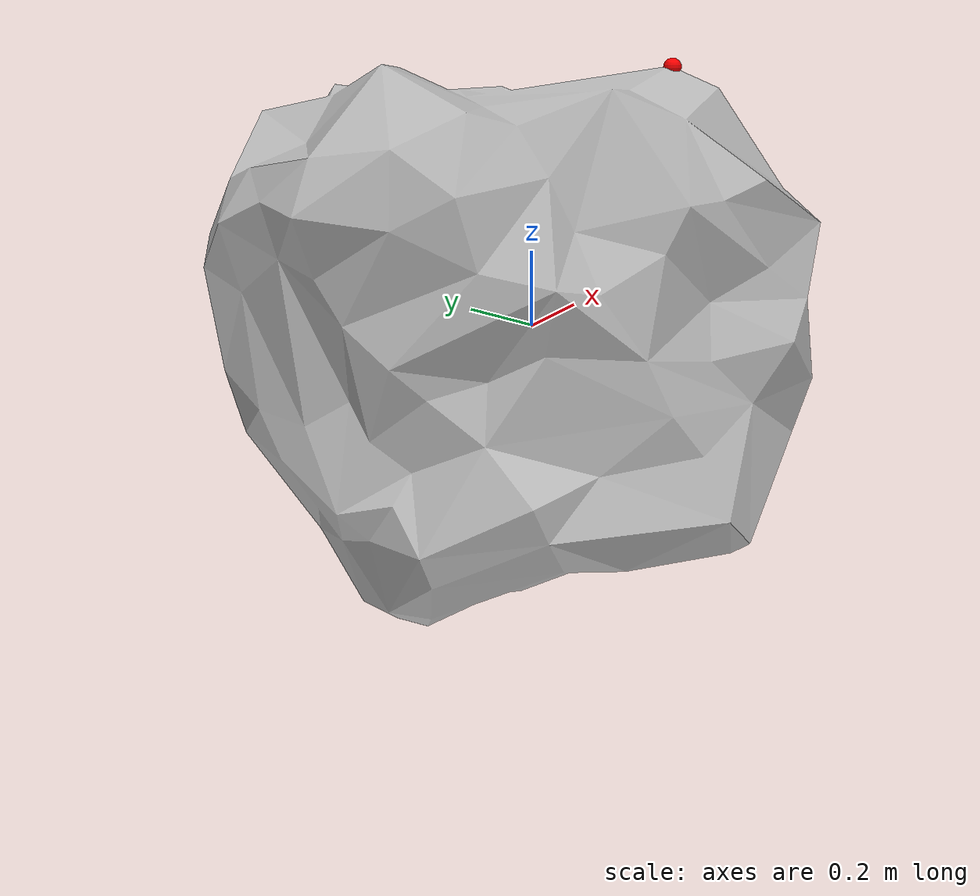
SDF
<?xml version='1.0'?>
<sdf version='1.6'>
  <model name='rock'>
    <link name='base_link'>
      <inertial>
        <pose frame=''>-0.056101 0.00734 0.02025 0 -0 0</pose>
        <mass>2569.46</mass>
        <inertia>
          <ixx>466.314</ixx>
          <ixy>6.554</ixy>
          <ixz>-0.846</ixz>
          <iyy>479.238</iyy>
          <iyz>-5.226</iyz>
          <izz>499.184</izz>
        </inertia>
      </inertial>
      <self_collide>0</self_collide>
      <enable_wind>0</enable_wind>
      <kinematic>0</kinematic>
      <pose frame=''>0 0 0 0 -0 0</pose>
      <visual name='visual'>
        <geometry>
          <mesh>
            <uri>model://rock/meshes/FallingRock01.dae</uri>
          </mesh>
        </geometry>
        <material>
          <shader type='pixel'/>
        </material>
        <pose frame=''>0 0 0 0 -0 0</pose>
        <transparency>0</transparency>
        <cast_shadows>1</cast_shadows>
      </visual>
      <collision name='collision'>
        <laser_retro>0</laser_retro>
        <max_contacts>10</max_contacts>
        <pose frame=''>0 0 0 0 -0 0</pose>
        <geometry>
          <mesh>
            <uri>model://rock/meshes/FallingRock01_Collider.dae</uri>
            <scale>1 1 1</scale>
          </mesh>
        </geometry>
        <surface>
          <friction>
            <ode>
              <mu>1</mu>
              <mu2>1</mu2>
              <fdir1>0 0 0</fdir1>
              <slip1>0</slip1>
              <slip2>0</slip2>
            </ode>
            <torsional>
              <coefficient>1</coefficient>
              <patch_radius>0</patch_radius>
              <surface_radius>0</surface_radius>
              <use_patch_radius>1</use_patch_radius>
              <ode>
                <slip>0</slip>
              </ode>
            </torsional>
          </friction>
          <bounce>
            <restitution_coefficient>0</restitution_coefficient>
            <threshold>1e+06</threshold>
          </bounce>
          <contact>
            <collide_without_contact>0</collide_without_contact>
            <collide_without_contact_bitmask>1</collide_without_contact_bitmask>
            <collide_bitmask>1</collide_bitmask>
            <ode>
              <soft_cfm>0</soft_cfm>
              <soft_erp>0.2</soft_erp>
              <kp>1e+13</kp>
              <kd>1</kd>
              <max_vel>0.01</max_vel>
              <min_depth>0</min_depth>
            </ode>
            <bullet>
              <split_impulse>1</split_impulse>
              <split_impulse_penetration_threshold>-0.01</split_impulse_penetration_threshold>
              <soft_cfm>0</soft_cfm>
              <soft_erp>0.2</soft_erp>
              <kp>1e+13</kp>
              <kd>1</kd>
            </bullet>
          </contact>
        </surface>
      </collision>
    </link>
    <link name='mineral'>
      <self_collide>0</self_collide>
      <enable_wind>0</enable_wind>
      <kinematic>0</kinematic>
      <pose frame=''>0.135504 -0.299571 0.660912 0 -0 0</pose>
      <inertial>
        <inertia>
          <ixx>0</ixx>
          <ixy>0</ixy>
          <ixz>0</ixz>
          <iyy>0</iyy>
          <iyz>0</iyz>
          <izz>0</izz>
        </inertia>
        <mass>0</mass>
        <pose frame=''>0 0 0 0 -0 0</pose>
      </inertial>
      <gravity>1</gravity>
      <visual name='visual'>
        <geometry>
          <sphere>
            <radius>0.0211175</radius>
          </sphere>
        </geometry>
        <material>
          <ambient>1 0 0 1</ambient>
          <diffuse>1 0 0 1</diffuse>
          <specular>0.1 0.1 0.1 1</specular>
          <shader type='pixel'>
            <normal_map>__default__</normal_map>
          </shader>
          <script>
            <name>ModelPreview_3::mineral::visual_MATERIAL_</name>
            <uri>__default__</uri>
          </script>
          <emissive>0 0 0 1</emissive>
        </material>
        <pose frame=''>0 0 0 0 -0 0</pose>
        <transparency>0</transparency>
        <cast_shadows>1</cast_shadows>
      </visual>
      <collision name='collision'>
        <laser_retro>0</laser_retro>
        <max_contacts>10</max_contacts>
        <pose frame=''>0 0 0 0 -0 0</pose>
        <geometry>
          <sphere>
            <radius>0.021117</radius>
          </sphere>
        </geometry>
        <surface>
          <friction>
            <ode>
              <mu>1</mu>
              <mu2>1</mu2>
              <fdir1>0 0 0</fdir1>
              <slip1>0</slip1>
              <slip2>0</slip2>
            </ode>
            <torsional>
              <coefficient>1</coefficient>
              <patch_radius>0</patch_radius>
              <surface_radius>0</surface_radius>
              <use_patch_radius>1</use_patch_radius>
              <ode>
                <slip>0</slip>
              </ode>
            </torsional>
          </friction>
          <bounce>
            <restitution_coefficient>0</restitution_coefficient>
            <threshold>1e+06</threshold>
          </bounce>
          <contact>
            <collide_without_contact>0</collide_without_contact>
            <collide_without_contact_bitmask>1</collide_without_contact_bitmask>
            <collide_bitmask>1</collide_bitmask>
            <ode>
              <soft_cfm>0</soft_cfm>
              <soft_erp>0.2</soft_erp>
              <kp>1e+13</kp>
              <kd>1</kd>
              <max_vel>0.01</max_vel>
              <min_depth>0</min_depth>
            </ode>
            <bullet>
              <split_impulse>1</split_impulse>
              <split_impulse_penetration_threshold>-0.01</split_impulse_penetration_threshold>
              <soft_cfm>0</soft_cfm>
              <soft_erp>0.2</soft_erp>
              <kp>1e+13</kp>
              <kd>1</kd>
            </bullet>
          </contact>
        </surface>
      </collision>
    </link>
    <static>1</static>
    <allow_auto_disable>1</allow_auto_disable>
  </model>
</sdf>
